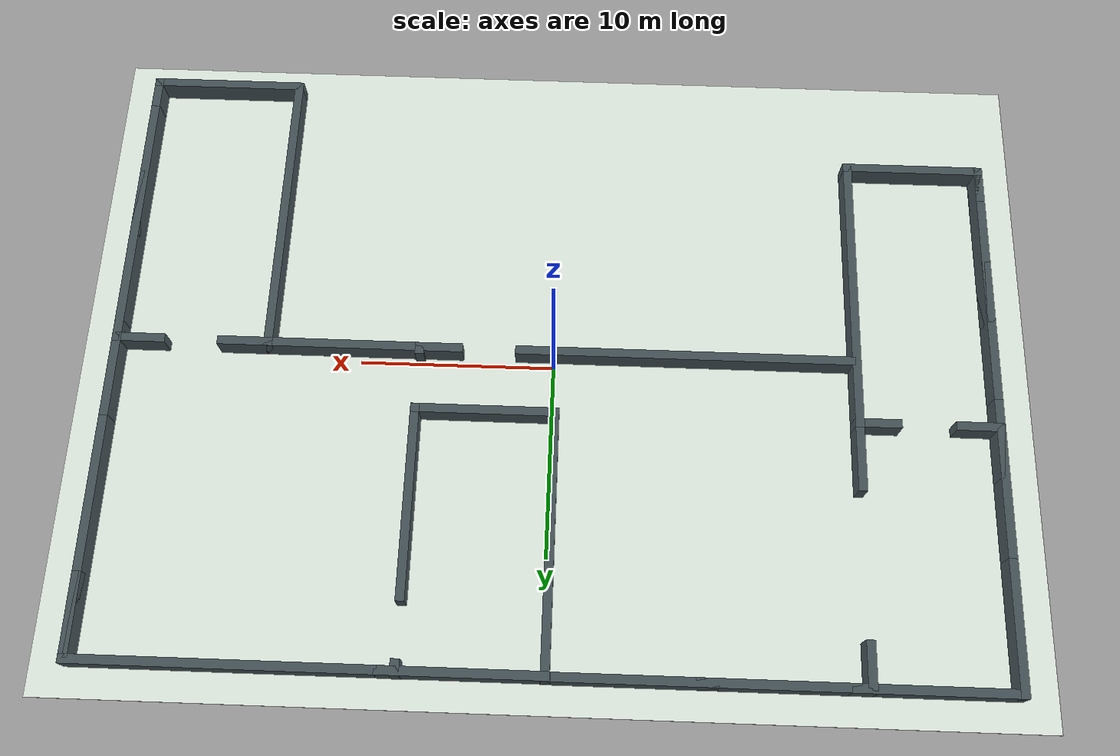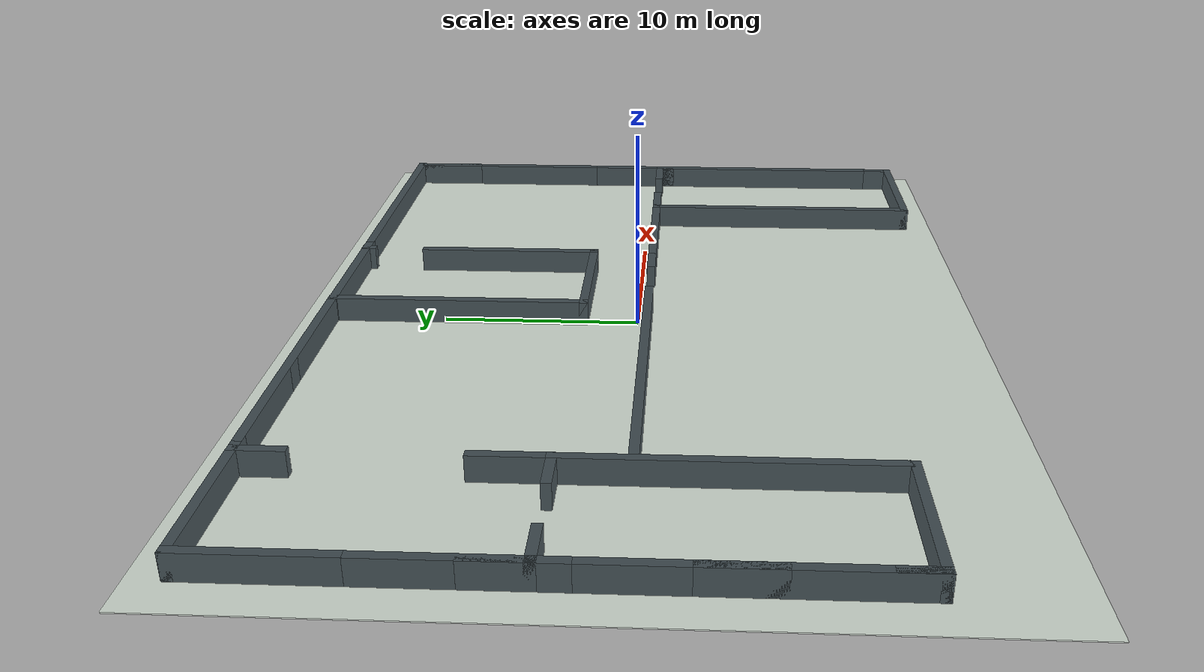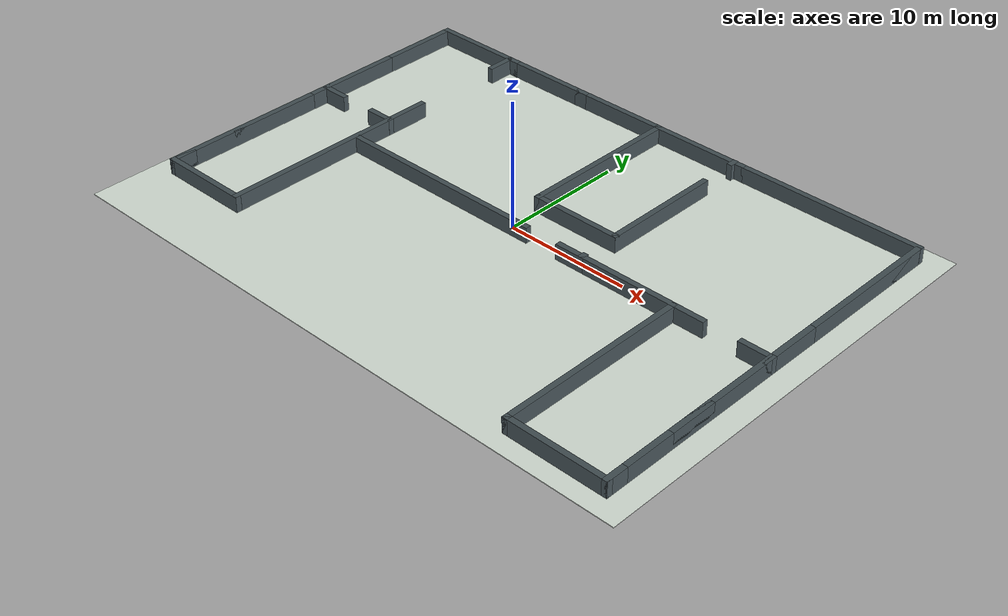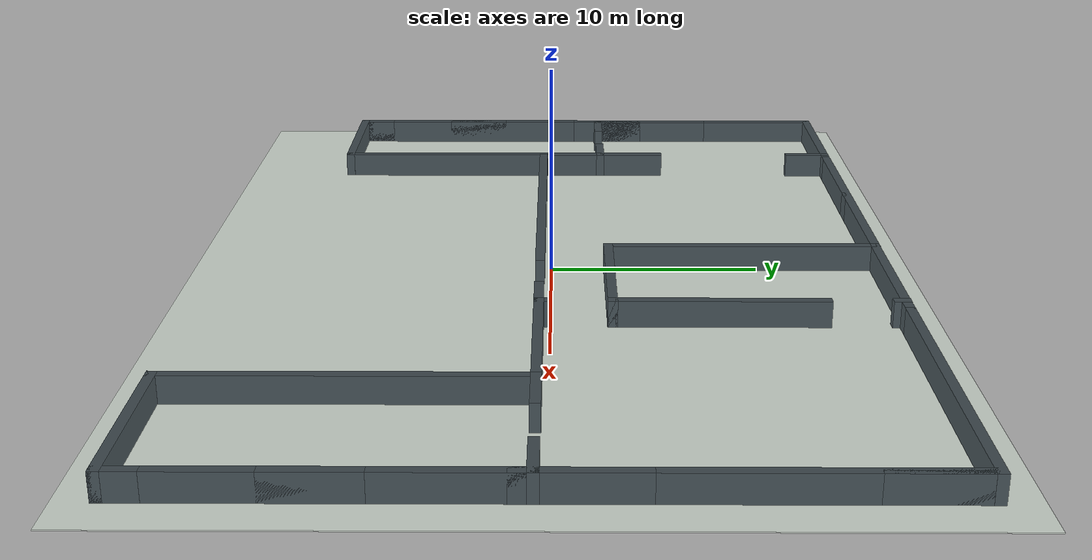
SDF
<?xml version="1.0" ?>
<sdf version="1.6">
  <world name="tb3_house">
    <gravity>0 0 -9.8</gravity>
    <scene>
      <ambient>0.65 0.65 0.65 1</ambient>
      <background>0.78 0.84 0.88 1</background>
    </scene>
    <include>
      <uri>model://sun</uri>
    </include>
    <model name="tb3_house_floor">
      <static>true</static>
      <pose>0.000 0.000 -0.025 0 0 0</pose>
      <link name="floor_link">
        <collision name="floor_collision">
          <geometry>
            <box><size>49.000 35.000 0.050</size></box>
          </geometry>
        </collision>
        <visual name="floor_visual">
          <geometry>
            <box><size>49.000 35.000 0.050</size></box>
          </geometry>
          <material><ambient>0.88 0.92 0.88 1</ambient><diffuse>0.88 0.92 0.88 1</diffuse></material>
        </visual>
      </link>
    </model>
    <model name="Wall_101_Wall_101_Collision">
      <static>true</static>
      <pose>-0.150 9.300 0.625 0 0 0</pose>
      <link name="Wall_101_Wall_101_Collision_link">
        <collision name="Wall_101_Wall_101_Collision_collision">
          <geometry>
            <box><size>0.450 13.500 1.250</size></box>
          </geometry>
        </collision>
        <visual name="Wall_101_Wall_101_Collision_visual">
          <geometry>
            <box><size>0.450 13.500 1.250</size></box>
          </geometry>
          <material><ambient>0.27 0.32 0.34 1</ambient><diffuse>0.27 0.32 0.34 1</diffuse></material>
        </visual>
      </link>
    </model>
    <model name="Wall_104_Wall_104_Collision_1">
      <static>true</static>
      <pose>6.900 15.649 0.625 0 0 0</pose>
      <link name="Wall_104_Wall_104_Collision_1_link">
        <collision name="Wall_104_Wall_104_Collision_1_collision">
          <geometry>
            <box><size>0.450 0.803 1.250</size></box>
          </geometry>
        </collision>
        <visual name="Wall_104_Wall_104_Collision_1_visual">
          <geometry>
            <box><size>0.450 0.803 1.250</size></box>
          </geometry>
          <material><ambient>0.27 0.32 0.34 1</ambient><diffuse>0.27 0.32 0.34 1</diffuse></material>
        </visual>
      </link>
    </model>
    <model name="Wall_104_Wall_104_Collision_0">
      <static>true</static>
      <pose>6.900 7.549 0.625 0 0 0</pose>
      <link name="Wall_104_Wall_104_Collision_0_link">
        <collision name="Wall_104_Wall_104_Collision_0_collision">
          <geometry>
            <box><size>0.450 9.998 1.250</size></box>
          </geometry>
        </collision>
        <visual name="Wall_104_Wall_104_Collision_0_visual">
          <geometry>
            <box><size>0.450 9.998 1.250</size></box>
          </geometry>
          <material><ambient>0.27 0.32 0.34 1</ambient><diffuse>0.27 0.32 0.34 1</diffuse></material>
        </visual>
      </link>
    </model>
    <model name="Wall_106_Wall_106_Collision_1">
      <static>true</static>
      <pose>21.367 -0.525 0.625 0 0 0</pose>
      <link name="Wall_106_Wall_106_Collision_1_link">
        <collision name="Wall_106_Wall_106_Collision_1_collision">
          <geometry>
            <box><size>2.717 0.450 1.250</size></box>
          </geometry>
        </collision>
        <visual name="Wall_106_Wall_106_Collision_1_visual">
          <geometry>
            <box><size>2.717 0.450 1.250</size></box>
          </geometry>
          <material><ambient>0.27 0.32 0.34 1</ambient><diffuse>0.27 0.32 0.34 1</diffuse></material>
        </visual>
      </link>
    </model>
    <model name="Wall_106_Wall_106_Collision_0">
      <static>true</static>
      <pose>15.892 -0.525 0.625 0 0 0</pose>
      <link name="Wall_106_Wall_106_Collision_0_link">
        <collision name="Wall_106_Wall_106_Collision_0_collision">
          <geometry>
            <box><size>2.833 0.450 1.250</size></box>
          </geometry>
        </collision>
        <visual name="Wall_106_Wall_106_Collision_0_visual">
          <geometry>
            <box><size>2.833 0.450 1.250</size></box>
          </geometry>
          <material><ambient>0.27 0.32 0.34 1</ambient><diffuse>0.27 0.32 0.34 1</diffuse></material>
        </visual>
      </link>
    </model>
    <model name="Wall_108_Wall_108_Collision_1">
      <static>true</static>
      <pose>5.906 -0.525 0.625 0 0 0</pose>
      <link name="Wall_108_Wall_108_Collision_1_link">
        <collision name="Wall_108_Wall_108_Collision_1_collision">
          <geometry>
            <box><size>2.438 0.450 1.250</size></box>
          </geometry>
        </collision>
        <visual name="Wall_108_Wall_108_Collision_1_visual">
          <geometry>
            <box><size>2.438 0.450 1.250</size></box>
          </geometry>
          <material><ambient>0.27 0.32 0.34 1</ambient><diffuse>0.27 0.32 0.34 1</diffuse></material>
        </visual>
      </link>
    </model>
    <model name="Wall_108_Wall_108_Collision_0">
      <static>true</static>
      <pose>-6.694 -0.525 0.625 0 0 0</pose>
      <link name="Wall_108_Wall_108_Collision_0_link">
        <collision name="Wall_108_Wall_108_Collision_0_collision">
          <geometry>
            <box><size>17.362 0.450 1.250</size></box>
          </geometry>
        </collision>
        <visual name="Wall_108_Wall_108_Collision_0_visual">
          <geometry>
            <box><size>17.362 0.450 1.250</size></box>
          </geometry>
          <material><ambient>0.27 0.32 0.34 1</ambient><diffuse>0.27 0.32 0.34 1</diffuse></material>
        </visual>
      </link>
    </model>
    <model name="Wall_81_Wall_81_Collision">
      <static>true</static>
      <pose>15.233 15.806 0.625 0 0 0</pose>
      <link name="Wall_81_Wall_81_Collision_link">
        <collision name="Wall_81_Wall_81_Collision_collision">
          <geometry>
            <box><size>15.000 0.450 1.250</size></box>
          </geometry>
        </collision>
        <visual name="Wall_81_Wall_81_Collision_visual">
          <geometry>
            <box><size>15.000 0.450 1.250</size></box>
          </geometry>
          <material><ambient>0.27 0.32 0.34 1</ambient><diffuse>0.27 0.32 0.34 1</diffuse></material>
        </visual>
      </link>
    </model>
    <model name="Wall_82_Wall_82_Collision">
      <static>true</static>
      <pose>3.750 15.806 0.625 0 0 0</pose>
      <link name="Wall_82_Wall_82_Collision_link">
        <collision name="Wall_82_Wall_82_Collision_collision">
          <geometry>
            <box><size>8.250 0.450 1.250</size></box>
          </geometry>
        </collision>
        <visual name="Wall_82_Wall_82_Collision_visual">
          <geometry>
            <box><size>8.250 0.450 1.250</size></box>
          </geometry>
          <material><ambient>0.27 0.32 0.34 1</ambient><diffuse>0.27 0.32 0.34 1</diffuse></material>
        </visual>
      </link>
    </model>
    <model name="Wall_83_Wall_83_Collision_2">
      <static>true</static>
      <pose>-7.756 15.825 0.625 0 0 0</pose>
      <link name="Wall_83_Wall_83_Collision_2_link">
        <collision name="Wall_83_Wall_83_Collision_2_collision">
          <geometry>
            <box><size>1.112 0.450 1.250</size></box>
          </geometry>
        </collision>
        <visual name="Wall_83_Wall_83_Collision_2_visual">
          <geometry>
            <box><size>1.112 0.450 1.250</size></box>
          </geometry>
          <material><ambient>0.27 0.32 0.34 1</ambient><diffuse>0.27 0.32 0.34 1</diffuse></material>
        </visual>
      </link>
    </model>
    <model name="Wall_83_Wall_83_Collision_0">
      <static>true</static>
      <pose>-0.168 15.825 0.625 0 0 0</pose>
      <link name="Wall_83_Wall_83_Collision_0_link">
        <collision name="Wall_83_Wall_83_Collision_0_collision">
          <geometry>
            <box><size>0.486 0.450 1.250</size></box>
          </geometry>
        </collision>
        <visual name="Wall_83_Wall_83_Collision_0_visual">
          <geometry>
            <box><size>0.486 0.450 1.250</size></box>
          </geometry>
          <material><ambient>0.27 0.32 0.34 1</ambient><diffuse>0.27 0.32 0.34 1</diffuse></material>
        </visual>
      </link>
    </model>
    <model name="Wall_83_Wall_83_Collision_1">
      <static>true</static>
      <pose>-7.668 15.825 0.625 0 0 0</pose>
      <link name="Wall_83_Wall_83_Collision_1_link">
        <collision name="Wall_83_Wall_83_Collision_1_collision">
          <geometry>
            <box><size>14.514 0.450 1.250</size></box>
          </geometry>
        </collision>
        <visual name="Wall_83_Wall_83_Collision_1_visual">
          <geometry>
            <box><size>14.514 0.450 1.250</size></box>
          </geometry>
          <material><ambient>0.27 0.32 0.34 1</ambient><diffuse>0.27 0.32 0.34 1</diffuse></material>
        </visual>
      </link>
    </model>
    <model name="Wall_83_Wall_83_Collision_3">
      <static>true</static>
      <pose>-7.756 15.825 0.625 0 0 0</pose>
      <link name="Wall_83_Wall_83_Collision_3_link">
        <collision name="Wall_83_Wall_83_Collision_3_collision">
          <geometry>
            <box><size>1.112 0.450 1.250</size></box>
          </geometry>
        </collision>
        <visual name="Wall_83_Wall_83_Collision_3_visual">
          <geometry>
            <box><size>1.112 0.450 1.250</size></box>
          </geometry>
          <material><ambient>0.27 0.32 0.34 1</ambient><diffuse>0.27 0.32 0.34 1</diffuse></material>
        </visual>
      </link>
    </model>
    <model name="Wall_84_Wall_84_Collision">
      <static>true</static>
      <pose>-18.600 15.825 0.625 0 0 0</pose>
      <link name="Wall_84_Wall_84_Collision_link">
        <collision name="Wall_84_Wall_84_Collision_collision">
          <geometry>
            <box><size>8.250 0.450 1.250</size></box>
          </geometry>
        </collision>
        <visual name="Wall_84_Wall_84_Collision_visual">
          <geometry>
            <box><size>8.250 0.450 1.250</size></box>
          </geometry>
          <material><ambient>0.27 0.32 0.34 1</ambient><diffuse>0.27 0.32 0.34 1</diffuse></material>
        </visual>
      </link>
    </model>
    <model name="Wall_85_Wall_85_Collision_2">
      <static>true</static>
      <pose>-22.500 3.993 0.625 0 0 0</pose>
      <link name="Wall_85_Wall_85_Collision_2_link">
        <collision name="Wall_85_Wall_85_Collision_2_collision">
          <geometry>
            <box><size>0.450 2.886 1.250</size></box>
          </geometry>
        </collision>
        <visual name="Wall_85_Wall_85_Collision_2_visual">
          <geometry>
            <box><size>0.450 2.886 1.250</size></box>
          </geometry>
          <material><ambient>0.27 0.32 0.34 1</ambient><diffuse>0.27 0.32 0.34 1</diffuse></material>
        </visual>
      </link>
    </model>
    <model name="Wall_85_Wall_85_Collision_1">
      <static>true</static>
      <pose>-22.500 5.991 0.625 0 0 0</pose>
      <link name="Wall_85_Wall_85_Collision_1_link">
        <collision name="Wall_85_Wall_85_Collision_1_collision">
          <geometry>
            <box><size>0.450 6.882 1.250</size></box>
          </geometry>
        </collision>
        <visual name="Wall_85_Wall_85_Collision_1_visual">
          <geometry>
            <box><size>0.450 6.882 1.250</size></box>
          </geometry>
          <material><ambient>0.27 0.32 0.34 1</ambient><diffuse>0.27 0.32 0.34 1</diffuse></material>
        </visual>
      </link>
    </model>
    <model name="Wall_85_Wall_85_Collision_0">
      <static>true</static>
      <pose>-22.500 12.741 0.625 0 0 0</pose>
      <link name="Wall_85_Wall_85_Collision_0_link">
        <collision name="Wall_85_Wall_85_Collision_0_collision">
          <geometry>
            <box><size>0.450 6.618 1.250</size></box>
          </geometry>
        </collision>
        <visual name="Wall_85_Wall_85_Collision_0_visual">
          <geometry>
            <box><size>0.450 6.618 1.250</size></box>
          </geometry>
          <material><ambient>0.27 0.32 0.34 1</ambient><diffuse>0.27 0.32 0.34 1</diffuse></material>
        </visual>
      </link>
    </model>
    <model name="Wall_86_Wall_86_Collision_2">
      <static>true</static>
      <pose>-22.500 -4.656 0.625 0 0 0</pose>
      <link name="Wall_86_Wall_86_Collision_2_link">
        <collision name="Wall_86_Wall_86_Collision_2_collision">
          <geometry>
            <box><size>0.450 3.425 1.250</size></box>
          </geometry>
        </collision>
        <visual name="Wall_86_Wall_86_Collision_2_visual">
          <geometry>
            <box><size>0.450 3.425 1.250</size></box>
          </geometry>
          <material><ambient>0.27 0.32 0.34 1</ambient><diffuse>0.27 0.32 0.34 1</diffuse></material>
        </visual>
      </link>
    </model>
    <model name="Wall_86_Wall_86_Collision_1">
      <static>true</static>
      <pose>-22.500 -5.354 0.625 0 0 0</pose>
      <link name="Wall_86_Wall_86_Collision_1_link">
        <collision name="Wall_86_Wall_86_Collision_1_collision">
          <geometry>
            <box><size>0.450 13.292 1.250</size></box>
          </geometry>
        </collision>
        <visual name="Wall_86_Wall_86_Collision_1_visual">
          <geometry>
            <box><size>0.450 13.292 1.250</size></box>
          </geometry>
          <material><ambient>0.27 0.32 0.34 1</ambient><diffuse>0.27 0.32 0.34 1</diffuse></material>
        </visual>
      </link>
    </model>
    <model name="Wall_86_Wall_86_Collision_3">
      <static>true</static>
      <pose>-22.500 -10.983 0.625 0 0 0</pose>
      <link name="Wall_86_Wall_86_Collision_3_link">
        <collision name="Wall_86_Wall_86_Collision_3_collision">
          <geometry>
            <box><size>0.450 2.034 1.250</size></box>
          </geometry>
        </collision>
        <visual name="Wall_86_Wall_86_Collision_3_visual">
          <geometry>
            <box><size>0.450 2.034 1.250</size></box>
          </geometry>
          <material><ambient>0.27 0.32 0.34 1</ambient><diffuse>0.27 0.32 0.34 1</diffuse></material>
        </visual>
      </link>
    </model>
    <model name="Wall_86_Wall_86_Collision_0">
      <static>true</static>
      <pose>-22.500 2.146 0.625 0 0 0</pose>
      <link name="Wall_86_Wall_86_Collision_0_link">
        <collision name="Wall_86_Wall_86_Collision_0_collision">
          <geometry>
            <box><size>0.450 1.708 1.250</size></box>
          </geometry>
        </collision>
        <visual name="Wall_86_Wall_86_Collision_0_visual">
          <geometry>
            <box><size>0.450 1.708 1.250</size></box>
          </geometry>
          <material><ambient>0.27 0.32 0.34 1</ambient><diffuse>0.27 0.32 0.34 1</diffuse></material>
        </visual>
      </link>
    </model>
    <model name="Wall_87_Wall_87_Collision">
      <static>true</static>
      <pose>-18.975 -11.775 0.625 0 0 0</pose>
      <link name="Wall_87_Wall_87_Collision_link">
        <collision name="Wall_87_Wall_87_Collision_collision">
          <geometry>
            <box><size>7.500 0.450 1.250</size></box>
          </geometry>
        </collision>
        <visual name="Wall_87_Wall_87_Collision_visual">
          <geometry>
            <box><size>7.500 0.450 1.250</size></box>
          </geometry>
          <material><ambient>0.27 0.32 0.34 1</ambient><diffuse>0.27 0.32 0.34 1</diffuse></material>
        </visual>
      </link>
    </model>
    <model name="Wall_88_Wall_88_Collision">
      <static>true</static>
      <pose>-15.455 -4.489 0.625 0 0 0</pose>
      <link name="Wall_88_Wall_88_Collision_link">
        <collision name="Wall_88_Wall_88_Collision_collision">
          <geometry>
            <box><size>0.450 15.000 1.250</size></box>
          </geometry>
        </collision>
        <visual name="Wall_88_Wall_88_Collision_visual">
          <geometry>
            <box><size>0.450 15.000 1.250</size></box>
          </geometry>
          <material><ambient>0.27 0.32 0.34 1</ambient><diffuse>0.27 0.32 0.34 1</diffuse></material>
        </visual>
      </link>
    </model>
    <model name="Wall_90_Wall_90_Collision">
      <static>true</static>
      <pose>3.375 2.775 0.625 0 0 0</pose>
      <link name="Wall_90_Wall_90_Collision_link">
        <collision name="Wall_90_Wall_90_Collision_collision">
          <geometry>
            <box><size>7.500 0.450 1.250</size></box>
          </geometry>
        </collision>
        <visual name="Wall_90_Wall_90_Collision_visual">
          <geometry>
            <box><size>7.500 0.450 1.250</size></box>
          </geometry>
          <material><ambient>0.27 0.32 0.34 1</ambient><diffuse>0.27 0.32 0.34 1</diffuse></material>
        </visual>
      </link>
    </model>
    <model name="Wall_91_Wall_91_Collision_0">
      <static>true</static>
      <pose>6.900 2.780 0.625 0 0 0</pose>
      <link name="Wall_91_Wall_91_Collision_0_link">
        <collision name="Wall_91_Wall_91_Collision_0_collision">
          <geometry>
            <box><size>0.450 0.441 1.250</size></box>
          </geometry>
        </collision>
        <visual name="Wall_91_Wall_91_Collision_0_visual">
          <geometry>
            <box><size>0.450 0.441 1.250</size></box>
          </geometry>
          <material><ambient>0.27 0.32 0.34 1</ambient><diffuse>0.27 0.32 0.34 1</diffuse></material>
        </visual>
      </link>
    </model>
    <model name="Wall_91_Wall_91_Collision_1">
      <static>true</static>
      <pose>6.900 -0.445 0.625 0 0 0</pose>
      <link name="Wall_91_Wall_91_Collision_1_link">
        <collision name="Wall_91_Wall_91_Collision_1_collision">
          <geometry>
            <box><size>0.450 0.609 1.250</size></box>
          </geometry>
        </collision>
        <visual name="Wall_91_Wall_91_Collision_1_visual">
          <geometry>
            <box><size>0.450 0.609 1.250</size></box>
          </geometry>
          <material><ambient>0.27 0.32 0.34 1</ambient><diffuse>0.27 0.32 0.34 1</diffuse></material>
        </visual>
      </link>
    </model>
    <model name="Wall_92_Wall_92_Collision">
      <static>true</static>
      <pose>10.800 -0.525 0.625 0 0 0</pose>
      <link name="Wall_92_Wall_92_Collision_link">
        <collision name="Wall_92_Wall_92_Collision_collision">
          <geometry>
            <box><size>8.250 0.450 1.250</size></box>
          </geometry>
        </collision>
        <visual name="Wall_92_Wall_92_Collision_visual">
          <geometry>
            <box><size>8.250 0.450 1.250</size></box>
          </geometry>
          <material><ambient>0.27 0.32 0.34 1</ambient><diffuse>0.27 0.32 0.34 1</diffuse></material>
        </visual>
      </link>
    </model>
    <model name="Wall_93_Wall_93_Collision">
      <static>true</static>
      <pose>14.700 -8.175 0.625 0 0 0</pose>
      <link name="Wall_93_Wall_93_Collision_link">
        <collision name="Wall_93_Wall_93_Collision_collision">
          <geometry>
            <box><size>0.450 15.750 1.250</size></box>
          </geometry>
        </collision>
        <visual name="Wall_93_Wall_93_Collision_visual">
          <geometry>
            <box><size>0.450 15.750 1.250</size></box>
          </geometry>
          <material><ambient>0.27 0.32 0.34 1</ambient><diffuse>0.27 0.32 0.34 1</diffuse></material>
        </visual>
      </link>
    </model>
    <model name="Wall_94_Wall_94_Collision">
      <static>true</static>
      <pose>18.600 -15.825 0.625 0 0 0</pose>
      <link name="Wall_94_Wall_94_Collision_link">
        <collision name="Wall_94_Wall_94_Collision_collision">
          <geometry>
            <box><size>8.250 0.450 1.250</size></box>
          </geometry>
        </collision>
        <visual name="Wall_94_Wall_94_Collision_visual">
          <geometry>
            <box><size>8.250 0.450 1.250</size></box>
          </geometry>
          <material><ambient>0.27 0.32 0.34 1</ambient><diffuse>0.27 0.32 0.34 1</diffuse></material>
        </visual>
      </link>
    </model>
    <model name="Wall_95_Wall_95_Collision_2">
      <static>true</static>
      <pose>22.500 -8.286 0.625 0 0 0</pose>
      <link name="Wall_95_Wall_95_Collision_2_link">
        <collision name="Wall_95_Wall_95_Collision_2_collision">
          <geometry>
            <box><size>0.450 3.826 1.250</size></box>
          </geometry>
        </collision>
        <visual name="Wall_95_Wall_95_Collision_2_visual">
          <geometry>
            <box><size>0.450 3.826 1.250</size></box>
          </geometry>
          <material><ambient>0.27 0.32 0.34 1</ambient><diffuse>0.27 0.32 0.34 1</diffuse></material>
        </visual>
      </link>
    </model>
    <model name="Wall_95_Wall_95_Collision_3">
      <static>true</static>
      <pose>22.500 -0.862 0.625 0 0 0</pose>
      <link name="Wall_95_Wall_95_Collision_3_link">
        <collision name="Wall_95_Wall_95_Collision_3_collision">
          <geometry>
            <box><size>0.450 1.123 1.250</size></box>
          </geometry>
        </collision>
        <visual name="Wall_95_Wall_95_Collision_3_visual">
          <geometry>
            <box><size>0.450 1.123 1.250</size></box>
          </geometry>
          <material><ambient>0.27 0.32 0.34 1</ambient><diffuse>0.27 0.32 0.34 1</diffuse></material>
        </visual>
      </link>
    </model>
    <model name="Wall_95_Wall_95_Collision_0">
      <static>true</static>
      <pose>22.500 -15.163 0.625 0 0 0</pose>
      <link name="Wall_95_Wall_95_Collision_0_link">
        <collision name="Wall_95_Wall_95_Collision_0_collision">
          <geometry>
            <box><size>0.450 1.774 1.250</size></box>
          </geometry>
        </collision>
        <visual name="Wall_95_Wall_95_Collision_0_visual">
          <geometry>
            <box><size>0.450 1.774 1.250</size></box>
          </geometry>
          <material><ambient>0.27 0.32 0.34 1</ambient><diffuse>0.27 0.32 0.34 1</diffuse></material>
        </visual>
      </link>
    </model>
    <model name="Wall_95_Wall_95_Collision_1">
      <static>true</static>
      <pose>22.500 -7.288 0.625 0 0 0</pose>
      <link name="Wall_95_Wall_95_Collision_1_link">
        <collision name="Wall_95_Wall_95_Collision_1_collision">
          <geometry>
            <box><size>0.450 13.976 1.250</size></box>
          </geometry>
        </collision>
        <visual name="Wall_95_Wall_95_Collision_1_visual">
          <geometry>
            <box><size>0.450 13.976 1.250</size></box>
          </geometry>
          <material><ambient>0.27 0.32 0.34 1</ambient><diffuse>0.27 0.32 0.34 1</diffuse></material>
        </visual>
      </link>
    </model>
    <model name="Wall_96_Wall_96_Collision_2">
      <static>true</static>
      <pose>22.500 13.708 0.625 0 0 0</pose>
      <link name="Wall_96_Wall_96_Collision_2_link">
        <collision name="Wall_96_Wall_96_Collision_2_collision">
          <geometry>
            <box><size>0.450 4.085 1.250</size></box>
          </geometry>
        </collision>
        <visual name="Wall_96_Wall_96_Collision_2_visual">
          <geometry>
            <box><size>0.450 4.085 1.250</size></box>
          </geometry>
          <material><ambient>0.27 0.32 0.34 1</ambient><diffuse>0.27 0.32 0.34 1</diffuse></material>
        </visual>
      </link>
    </model>
    <model name="Wall_96_Wall_96_Collision_0">
      <static>true</static>
      <pose>22.500 1.505 0.625 0 0 0</pose>
      <link name="Wall_96_Wall_96_Collision_0_link">
        <collision name="Wall_96_Wall_96_Collision_0_collision">
          <geometry>
            <box><size>0.450 4.510 1.250</size></box>
          </geometry>
        </collision>
        <visual name="Wall_96_Wall_96_Collision_0_visual">
          <geometry>
            <box><size>0.450 4.510 1.250</size></box>
          </geometry>
          <material><ambient>0.27 0.32 0.34 1</ambient><diffuse>0.27 0.32 0.34 1</diffuse></material>
        </visual>
      </link>
    </model>
    <model name="Wall_96_Wall_96_Collision_1">
      <static>true</static>
      <pose>22.500 9.755 0.625 0 0 0</pose>
      <link name="Wall_96_Wall_96_Collision_1_link">
        <collision name="Wall_96_Wall_96_Collision_1_collision">
          <geometry>
            <box><size>0.450 11.990 1.250</size></box>
          </geometry>
        </collision>
        <visual name="Wall_96_Wall_96_Collision_1_visual">
          <geometry>
            <box><size>0.450 11.990 1.250</size></box>
          </geometry>
          <material><ambient>0.27 0.32 0.34 1</ambient><diffuse>0.27 0.32 0.34 1</diffuse></material>
        </visual>
      </link>
    </model>
    <model name="Wall_98_Wall_98_Collision_0">
      <static>true</static>
      <pose>-21.501 2.775 0.625 0 0 0</pose>
      <link name="Wall_98_Wall_98_Collision_0_link">
        <collision name="Wall_98_Wall_98_Collision_0_collision">
          <geometry>
            <box><size>2.447 0.450 1.250</size></box>
          </geometry>
        </collision>
        <visual name="Wall_98_Wall_98_Collision_0_visual">
          <geometry>
            <box><size>2.447 0.450 1.250</size></box>
          </geometry>
          <material><ambient>0.27 0.32 0.34 1</ambient><diffuse>0.27 0.32 0.34 1</diffuse></material>
        </visual>
      </link>
    </model>
    <model name="Wall_98_Wall_98_Collision_1">
      <static>true</static>
      <pose>-16.401 2.775 0.625 0 0 0</pose>
      <link name="Wall_98_Wall_98_Collision_1_link">
        <collision name="Wall_98_Wall_98_Collision_1_collision">
          <geometry>
            <box><size>2.353 0.450 1.250</size></box>
          </geometry>
        </collision>
        <visual name="Wall_98_Wall_98_Collision_1_visual">
          <geometry>
            <box><size>2.353 0.450 1.250</size></box>
          </geometry>
          <material><ambient>0.27 0.32 0.34 1</ambient><diffuse>0.27 0.32 0.34 1</diffuse></material>
        </visual>
      </link>
    </model>
    <model name="Wall_99_Wall_99_Collision_0">
      <static>true</static>
      <pose>-15.450 4.437 0.625 0 0 0</pose>
      <link name="Wall_99_Wall_99_Collision_0_link">
        <collision name="Wall_99_Wall_99_Collision_0_collision">
          <geometry>
            <box><size>0.450 3.773 1.250</size></box>
          </geometry>
        </collision>
        <visual name="Wall_99_Wall_99_Collision_0_visual">
          <geometry>
            <box><size>0.450 3.773 1.250</size></box>
          </geometry>
          <material><ambient>0.27 0.32 0.34 1</ambient><diffuse>0.27 0.32 0.34 1</diffuse></material>
        </visual>
      </link>
    </model>
    <model name="Wall_99_Wall_99_Collision_1">
      <static>true</static>
      <pose>-15.450 14.811 0.625 0 0 0</pose>
      <link name="Wall_99_Wall_99_Collision_1_link">
        <collision name="Wall_99_Wall_99_Collision_1_collision">
          <geometry>
            <box><size>0.450 2.478 1.250</size></box>
          </geometry>
        </collision>
        <visual name="Wall_99_Wall_99_Collision_1_visual">
          <geometry>
            <box><size>0.450 2.478 1.250</size></box>
          </geometry>
          <material><ambient>0.27 0.32 0.34 1</ambient><diffuse>0.27 0.32 0.34 1</diffuse></material>
        </visual>
      </link>
    </model>
  </world>
</sdf>
